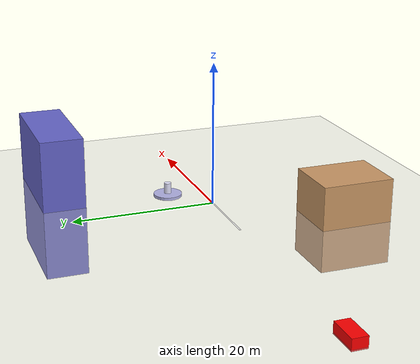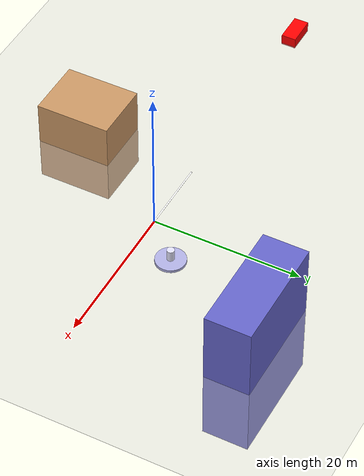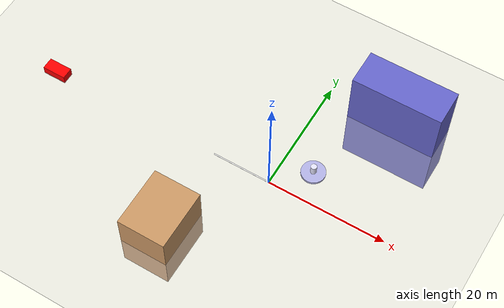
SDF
<sdf version="1.6">
 <world name="urban_cityscape">
  <include><uri>model://sun</uri></include>
  <include><uri>model://ground_plane</uri></include>
  <model name="road_network">
   <include>
    <uri>model://asphalt_plane</uri>
    <name>main_road</name>
    <pose>0 0 0.01 0 0 0</pose>
    <scale>20 100 1</scale>
   </include>
   <include>
    <uri>model://asphalt_plane</uri>
    <name>cross_road</name>
    <pose>0 30 0.01 0 0 1.57</pose>
    <scale>15 60 1</scale>
   </include>
   <model name="lane_marking">
    <static>true</static>
    <link name="marking">
     <visual name="lane_line">
      <geometry><box><size>15 0.2 0.02</size></box></geometry>
      <material><ambient>1 1 1 1</ambient><diffuse>1 1 1 1</diffuse></material>
     </visual>
     <pose>-2.5 0 0.02 0 0 0</pose>
    </link>
   </model>
  </model>
  <model name="building_1">
   <pose>-10 -15 0 0 0 0</pose>
   <link name="link">
    <collision name="collision"><geometry><box><size>8 10 12</size></box></geometry></collision>
    <visual name="visual">
     <geometry><box><size>8 10 12</size></box></geometry>
     <material><ambient>0.8 0.6 0.4 1</ambient></material>
    </visual>
   </link>
  </model>
  <model name="building_2">
   <pose>12 20 0 0 0 1.57</pose>
   <link name="link">
    <collision name="collision"><geometry><box><size>6 15 20</size></box></geometry></collision>
    <visual name="visual">
     <geometry><box><size>6 15 20</size></box></geometry>
     <material><ambient>0.4 0.4 0.8 1</ambient></material>
    </visual>
   </link>
  </model>
  <model name="landmark_fountain">
   <pose>5 5 0.2 0 0 0</pose>
   <link name="link">
    <visual name="base">
     <geometry><cylinder><radius>2</radius><length>0.4</length></cylinder></geometry>
     <material><ambient>0.7 0.7 0.9 1</ambient></material>
    </visual>
    <visual name="center">
     <geometry><cylinder><radius>0.5</radius><length>1.5</length></cylinder></geometry>
     <pose>0 0 1 0 0 0</pose>
     <material><ambient>0.9 0.9 1 1</ambient></material>
    </visual>
    <sensor name="water_jet" type="gpu_ray">
     <always_on>true</always_on>
     <visualize>true</visualize>
     <update_rate>10</update_rate>
    </sensor>
   </link>
  </model>
  <model name="moving_vehicle">
   <pose>-40 0 0.5 0 0 0</pose>
   <link name="chassis">
    <kinematic>true</kinematic>
    <visual name="car_body">
     <geometry><box><size>4 2 1.5</size></box></geometry>
     <material><ambient>1 0 0 1</ambient></material>
    </visual>
   </link>
   <plugin name="linear_move" filename="libgazebo_ros_planar_move.so">
    <command_topic>cmd_vel</command_topic>
    <odometry_topic>odom</odometry_topic>
    <publish_odom>true</publish_odom>
    <x_velocity>1.0</x_velocity>
   </plugin>
  </model>
  <physics name="default_physics" default="0" type="ode">
   <max_step_size>0.001</max_step_size>
   <real_time_factor>1</real_time_factor>
  </physics>
  <scene><ambient>0.8 0.8 0.8 1</ambient><background>0.7 0.85 1 1</background><shadows>true</shadows></scene>
 </world>
</sdf>
